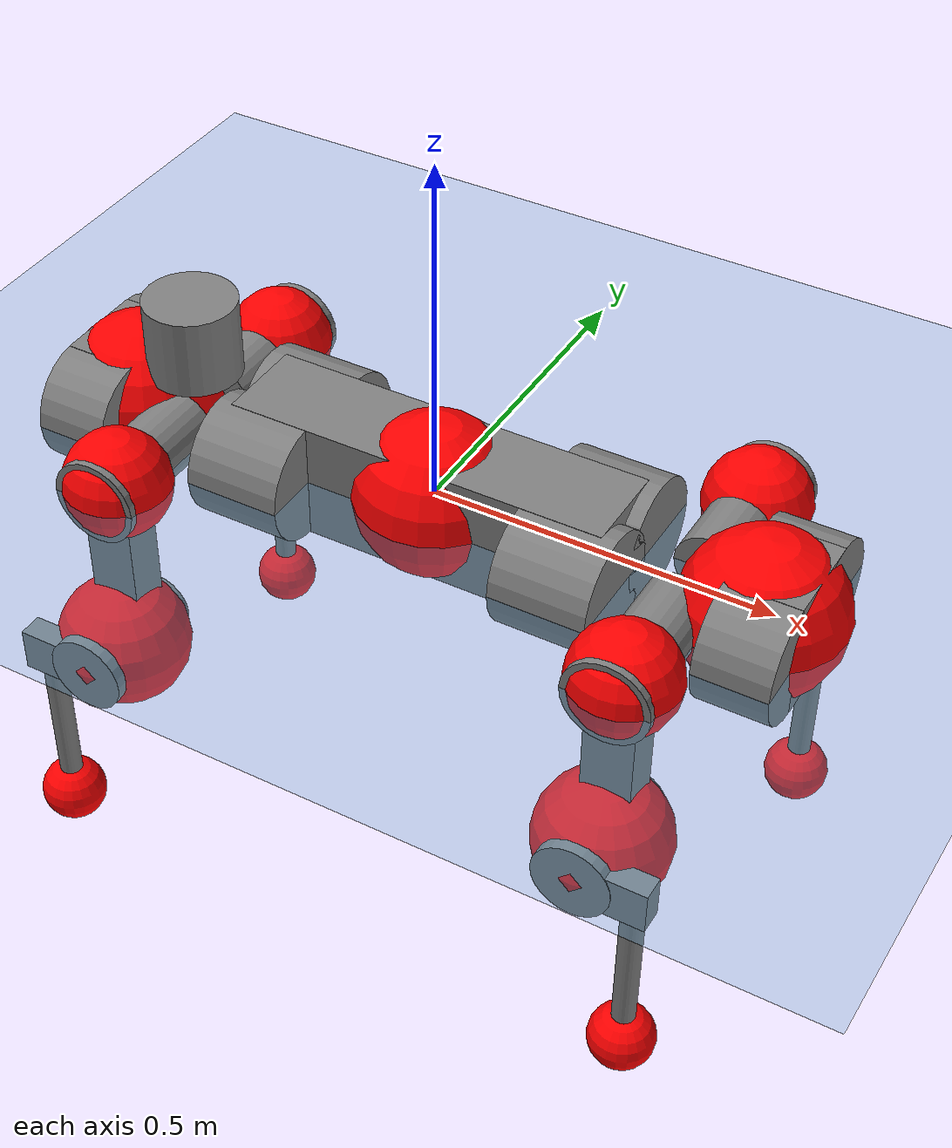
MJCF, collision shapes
<mujoco model="anymal_c">
  <compiler angle="radian" assetdir="assets" balanceinertia="true" inertiafromgeom="false"/>

  <option timestep="0.005" density="1.2" viscosity="2e-05"/>

  <size nkey="1"/>

  <visual>
    <quality shadowsize="8192"/>
    <map shadowclip="0.5"/>
  </visual>

  <default>
    <default class="/">
      <material specular="0" shininess="0.25"/>
      <geom contype="0" conaffinity="0" group="1" solref="-1000 -80"/>
      <site size="0.01 0.005 0.005" group="5"/>
      <general forcelimited="true" forcerange="-80 80" biastype="affine" gainprm="80" biasprm="0 -80 -2"/>
      <default class="anymal_c">
        <joint armature="0.01" damping="0.01" frictionloss="0.1"/>
        <default class="visual">
          <geom type="mesh" group="2"/>
          <default class="visual_zflip"/>
        </default>
        <default class="collision">
          <geom type="cylinder" group="3"/>
          <default class="foot">
            <geom size="0.03 0 0" type="sphere" condim="6" priority="1" friction="0.8 0.02 0.01" solimp="0.015 1 0.03"/>
          </default>
        </default>
      </default>
      <default class="reward_collision_sphere">
        <geom group="5" rgba="1 0 0 1"/>
      </default>
    </default>
  </default>

  <asset>
    <texture type="skybox" colorspace="auto" name="//unnamed_texture_0" builtin="gradient" rgb1="0.95 0.95 0.95" rgb2="0.95 0.95 0.95" width="100" height="600"/>
    <texture type="2d" colorspace="auto" name="texplane" builtin="checker" rgb1="0.345 0.575 0.748" rgb2="0.345 0.575 0.748" markrgb="1 1 1" width="512" height="512"/>
    <texture type="2d" colorspace="linear" name="base" file="base.png"/>
    <texture type="2d" colorspace="linear" name="top_shell" file="top_shell.png"/>
    <texture type="2d" colorspace="linear" name="bottom_shell" file="bottom_shell.png"/>
    <texture type="2d" colorspace="linear" name="remote" file="remote.png"/>
    <texture type="2d" colorspace="linear" name="hatch" file="hatch.png"/>
    <texture type="2d" colorspace="linear" name="handle" file="handle.png"/>
    <texture type="2d" colorspace="linear" name="face" file="face.png"/>
    <texture type="2d" colorspace="linear" name="battery" file="battery.png"/>
    <texture type="2d" colorspace="linear" name="lidar_cage" file="lidar_cage.png"/>
    <texture type="2d" colorspace="linear" name="depth_camera" file="depth_camera.png"/>
    <texture type="2d" colorspace="linear" name="wide_angle_camera" file="wide_angle_camera.png"/>
    <texture type="2d" colorspace="linear" name="lidar" file="lidar.png"/>
    <texture type="2d" colorspace="linear" name="drive" file="drive.png"/>
    <texture type="2d" colorspace="linear" name="hip_l" file="hip_l.png"/>
    <texture type="2d" colorspace="linear" name="shank_l" file="shank_l.png"/>
    <texture type="2d" colorspace="linear" name="foot" file="foot.png"/>
    <texture type="2d" colorspace="linear" name="thigh" file="thigh.png"/>
    <texture type="2d" colorspace="linear" name="shank_r" file="shank_r.png"/>
    <texture type="2d" colorspace="linear" name="hip_r" file="hip_r.png"/>
    <material name="MatPlane" class="/" texture="texplane" texuniform="true" texrepeat="2 2" specular="0.9" shininess="0.5"/>
    <material name="black_plastic" class="/" rgba="0.007 0.007 0.007 1"/>
    <material name="green" class="/" rgba="0.052 0.178 0.033 1"/>
    <material name="red" class="/" rgba="0.178 0.006 0.005 1"/>
    <material name="yellow" class="/" rgba="0.178 0.119 0.006 1"/>
    <material name="lwl" class="/" rgba="0.8 0.8 0.8 1"/>
    <material name="base" class="/" texture="base"/>
    <material name="top_shell" class="/" texture="top_shell"/>
    <material name="bottom_shell" class="/" texture="bottom_shell"/>
    <material name="hip_l" class="/" texture="hip_l"/>
    <material name="thigh" class="/" texture="thigh"/>
    <material name="shank_l" class="/" texture="shank_l"/>
    <material name="foot" class="/" texture="foot"/>
    <material name="hip_r" class="/" texture="hip_r"/>
    <material name="shank" class="/" texture="shank_r"/>
    <material name="hatch" class="/" texture="hatch"/>
    <material name="remote" class="/" texture="remote"/>
    <material name="handle" class="/" texture="handle"/>
    <material name="face" class="/" texture="face"/>
    <material name="depth_camera" class="/" texture="depth_camera"/>
    <material name="wide_angle_camera" class="/" texture="wide_angle_camera"/>
    <material name="battery" class="/" texture="battery"/>
    <material name="lidar_cage" class="/" texture="lidar_cage"/>
    <material name="lidar" class="/" texture="lidar"/>
    <material name="drive" class="/" texture="drive"/>
    <mesh name="base_0" class="/" file="base_0.obj"/>
    <mesh name="base_1" class="/" file="base_1.obj"/>
    <mesh name="base_2" class="/" file="base_2.obj"/>
    <mesh name="base_3" class="/" file="base_3.obj"/>
    <mesh name="base_4" class="/" file="base_4.obj"/>
    <mesh name="base_5" class="/" file="base_5.obj"/>
    <mesh name="top_shell" class="/" file="top_shell.obj"/>
    <mesh name="bottom_shell" class="/" file="bottom_shell.obj"/>
    <mesh name="remote" class="/" file="remote.obj"/>
    <mesh name="handle" class="/" file="handle.obj"/>
    <mesh name="face" class="/" file="face.obj"/>
    <mesh name="wide_angle_camera" class="/" file="wide_angle_camera.obj"/>
    <mesh name="depth_camera" class="/" file="depth_camera.obj"/>
    <mesh name="battery" class="/" file="battery.obj"/>
    <mesh name="lidar_cage" class="/" file="lidar_cage.obj"/>
    <mesh name="lidar" class="/" file="lidar.obj"/>
    <mesh name="drive" class="/" file="drive.obj"/>
    <mesh name="hip_l" class="/" file="hip_l.obj"/>
    <mesh name="thigh" class="/" file="thigh.obj"/>
    <mesh name="shank_l" class="/" file="shank_l.obj"/>
    <mesh name="foot" class="/" file="foot.obj"/>
    <mesh name="hip_r" class="/" file="hip_r.obj"/>
    <mesh name="hatch" class="/" file="hatch.obj"/>
    <mesh name="shank_r" class="/" file="shank_r.obj"/>
  </asset>

  <worldbody>
    <geom name="floor" class="/" size="100 100 0.125" type="plane" group="0" material="MatPlane"/>
    <light name="toplight_shadow" class="/" pos="0 0 5" dir="0.0990148 0.0990148 -0.990148" type="directional" ambient="0.04 0.04 0.04" diffuse="0.55 0.55 0.55" specular="0.12 0.12 0.12"/>
    <light name="toplight_fill" class="/" pos="0 0 5" dir="0.0990148 0.0990148 -0.990148" type="directional" castshadow="false" ambient="0.04 0.04 0.04" diffuse="0.3 0.3 0.3" specular="0.08 0.08 0.08"/>
    <body name="trunk" childclass="anymal_c" pos="0.00216967 -0.000928997 -0.000553776" quat="1 0.000136247 -0.000375169 -0.000114861">
      <inertial pos="0.00242742 2.36658e-05 0.0456694" quat="0.499422 0.500451 0.499583 0.500543" mass="17.1594" diaginertia="0.927555 0.395137 0.148916"/>
      <joint name="//unnamed_joint_0" type="free" armature="0" damping="0" frictionloss="0"/>
      <geom name="//unnamed_geom_1" class="visual" material="green" mesh="base_0"/>
      <geom name="//unnamed_geom_2" class="visual" material="yellow" mesh="base_1"/>
      <geom name="//unnamed_geom_3" class="visual" material="red" mesh="base_2"/>
      <geom name="//unnamed_geom_4" class="visual" material="black_plastic" mesh="base_3"/>
      <geom name="//unnamed_geom_5" class="visual" material="lwl" mesh="base_4"/>
      <geom name="//unnamed_geom_6" class="visual" material="base" mesh="base_5"/>
      <geom name="trunk_1" class="collision" size="0.280675 0.0677491 0.0871059" type="box"/>
      <geom name="trunk_2" class="collision" size="0.0871059 0.0701687" pos="0.232131 0.0636224 0" quat="0.707107 0 0.707107 0"/>
      <geom name="trunk_3" class="collision" size="0.0871059 0.0701687" pos="-0.232131 0.0636224 0" quat="0.707107 0 0.707107 0"/>
      <geom name="trunk_4" class="collision" size="0.0871059 0.0701687" pos="0.232131 -0.0636224 0" quat="0.707107 0 0.707107 0"/>
      <geom name="trunk_5" class="collision" size="0.0871059 0.0701687" pos="-0.232131 -0.0636224 0" quat="0.707107 0 0.707107 0"/>
      <geom name="//unnamed_geom_12" class="visual" material="top_shell" mesh="top_shell"/>
      <geom name="//unnamed_geom_13" class="visual" material="bottom_shell" mesh="bottom_shell"/>
      <geom name="//unnamed_geom_14" class="visual" material="remote" mesh="remote"/>
      <geom name="//unnamed_geom_15" class="visual" material="handle" mesh="handle"/>
      <geom name="//unnamed_geom_16" class="visual" pos="0.442383 0 0" quat="1 0 0 0" material="face" mesh="face"/>
      <geom name="trunk_6" class="collision" size="0.0532314 0.0677491 0.0871059" pos="0.501083 0 0" type="box"/>
      <geom name="//unnamed_geom_18" class="collision" size="0.0871059 0.0532314" pos="0.501083 0.0636224 0" quat="0.707107 0 0.707107 0"/>
      <geom name="//unnamed_geom_19" class="collision" size="0.0871059 0.0532314" pos="0.501083 -0.0636224 0" quat="0.707107 0 0.707107 0"/>
      <geom name="//unnamed_geom_20" class="visual" pos="0.492699 0 -0.026016" quat="0.965926 0 0.258819 0" material="depth_camera" mesh="depth_camera"/>
      <geom name="//unnamed_geom_21" class="visual" pos="0.547509 0 0.0138828" material="wide_angle_camera" mesh="wide_angle_camera"/>
      <geom name="//unnamed_geom_22" class="visual_zflip" pos="-0.442383 0 0" quat="0 0 0 1" material="face" mesh="face"/>
      <geom name="trunk_7" class="collision" size="0.0532314 0.0677491 0.0871059" pos="-0.501083 0 0" quat="0 0 0 1" type="box"/>
      <geom name="//unnamed_geom_24" class="collision" size="0.0871059 0.0532314" pos="-0.501083 -0.0636224 0" quat="0 -0.707107 0 0.707107"/>
      <geom name="//unnamed_geom_25" class="collision" size="0.0871059 0.0532314" pos="-0.501083 0.0636224 0" quat="0 -0.707107 0 0.707107"/>
      <geom name="//unnamed_geom_26" class="visual" pos="-0.492699 0 -0.026016" quat="0 -0.258819 0 0.965926" material="depth_camera" mesh="depth_camera"/>
      <geom name="//unnamed_geom_27" class="visual_zflip" pos="-0.547509 0 0.0138828" quat="0 0 0 1" material="wide_angle_camera" mesh="wide_angle_camera"/>
      <geom name="//unnamed_geom_28" class="visual" material="battery" mesh="battery"/>
      <geom name="//unnamed_geom_29" class="visual" pos="0 0.0674098 0.0280034" quat="0.683013 -0.183013 0.183013 0.683013" material="depth_camera" mesh="depth_camera"/>
      <geom name="//unnamed_geom_30" class="visual" pos="0 -0.0674098 0.0280034" quat="0.683013 0.183013 0.183013 -0.683013" material="depth_camera" mesh="depth_camera"/>
      <geom name="//unnamed_geom_31" class="visual" pos="-0.388486 0 0.0681618" quat="1 0 0 0" material="lidar_cage" mesh="lidar_cage"/>
      <geom name="trunk_8" class="collision" size="0.0677491 0.0580706" pos="-0.388486 0 0.123804"/>
      <geom name="//unnamed_geom_33" class="visual" pos="-0.388486 -6.22223e-05 0.131872" quat="0.707107 0 0 -0.707107" material="lidar" mesh="lidar"/>
      <geom name="//unnamed_geom_34" class="visual" pos="0.320074 0.0945312 -3.18789e-10" quat="0.258819 0.965926 0 0" material="drive" mesh="drive"/>
      <geom name="//unnamed_geom_35" class="visual" pos="0.320074 -0.0945312 3.18789e-10" quat="0.258819 -0.965926 0 0" material="drive" mesh="drive"/>
      <geom name="//unnamed_geom_36" class="visual" pos="-0.320074 0.0945312 3.18789e-10" quat="0 0 0.965926 -0.258819" material="drive" mesh="drive"/>
      <geom name="//unnamed_geom_37" class="visual" pos="-0.320074 -0.0945312 -3.18789e-10" quat="0 0 -0.965926 -0.258819" material="drive" mesh="drive"/>
      <geom name="//unnamed_geom_38" class="visual" pos="0.123803 0 0.0676981" quat="1 0 0 0" material="hatch" mesh="hatch"/>
      <geom name="//unnamed_geom_39" class="reward_collision_sphere" size="0.116141"/>
      <geom name="//unnamed_geom_40" class="reward_collision_sphere" size="0.116141" pos="0.480271 0 0"/>
      <geom name="//unnamed_geom_41" class="reward_collision_sphere" size="0.116141" pos="-0.480271 0 0"/>
      <site name="imu" pos="0.260658 0.0069947 0.0304008" size="0.00967844"/>
      <camera name="track" pos="0 -1.81778 0" quat="0.707107 0.707107 0 0" mode="trackcom"/>
      <camera name="ego_camera" pos="0.480271 0 -0.0370949" quat="-0.5 -0.5 0.5 0.5"/>
      <body name="LF_HIP" pos="0.320412 0.0951472 0.000574092" quat="0.258577 0.96599 -0.000610876 -0.000648859">
        <inertial pos="0.0581434 -0.0126836 -0.00720464" quat="-0.128106 0.710093 -0.134932 0.67908" mass="2.53427" diaginertia="0.00814525 0.00299943 0.0022424"/>
        <joint name="LF_HAA" pos="0 0 0" axis="0.999889 -0.00690754 0.0131934" range="-0.729784 0.489265" armature="0.00846769" damping="0.00771787" frictionloss="0.0945567"/>
        <geom name="//unnamed_geom_42" class="visual" pos="0 -1.87529e-05 3.08015e-06" quat="0.258819 -0.965926 0 0" material="hip_l" mesh="hip_l"/>
        <geom name="//unnamed_geom_43" class="visual" pos="0.0639294 -0.0753854 -0.0436605" quat="0.183013 -0.683013 0.683013 0.183013" material="drive" mesh="drive"/>
        <geom name="//unnamed_geom_44" class="collision" size="0.0483922 0.0677491" pos="0.0639294 -0.0108702 -0.0064035" quat="-0.353553 -0.612372 0.612372 -0.353553"/>
        <body name="LF_THIGH" pos="0.064114 -0.0651308 -0.0395409" quat="0.183244 -0.68288 0.683032 0.183204">
          <inertial pos="0.0328123 6.24984e-05 -0.230319" quat="0.993117 -0.00314794 -0.0823646 0.0832118" mass="2.83385" diaginertia="0.0424415 0.0187963 0.00290651"/>
          <joint name="LF_HFE" pos="0 0 0" axis="1 -0.000730362 0.000252549" range="-3.16174 3.14028" armature="0.0106208" damping="0.00867054" frictionloss="0.09639"/>
          <geom name="//unnamed_geom_45" class="visual" pos="0.00315109 4.96538e-06 0" quat="0.707107 0 0 -0.707107" material="thigh" mesh="thigh"/>
          <geom name="//unnamed_geom_46" class="collision" size="0.0629099 0.0387138" pos="0.0426908 0 0" quat="0.5 0.5 -0.5 -0.5"/>
          <geom name="//unnamed_geom_47" class="collision" size="0.0362941 0.0290353 0.13677" pos="0.0320181 0 -0.131051" quat="0.707107 0 0 -0.707107" type="box"/>
          <geom name="//unnamed_geom_48" class="visual" pos="0.107047 0 -0.264301" quat="1 0 0 0" material="drive" mesh="drive"/>
          <geom name="//unnamed_geom_49" class="collision" size="0.0483922 0.0677491" pos="0.0323382 0 -0.264301" quat="0.707107 0 0.707107 0"/>
          <geom name="//unnamed_geom_50" class="reward_collision_sphere" size="0.0774275" pos="0.0266817 0 0"/>
          <body name="LF_SHANK" pos="0.107352 -0.00292301 -0.263307" quat="1 0.000230686 0.000348319 0.000203397">
            <inertial pos="0.00532303 -0.0549405 -0.0750597" quat="0.992505 -0.120394 0.00817846 -0.0193157" mass="0.537457" diaginertia="0.0138858 0.00574577 0.000752443"/>
            <joint name="LF_KFE" pos="0 0 0" axis="0.999988 0.0033701 0.0035378" range="-3.14614 3.14279" armature="0.00963072" damping="0.00128183" frictionloss="0.0991349"/>
            <geom name="//unnamed_geom_51" class="visual" pos="0.0010275 0.0054787 0" quat="0.707107 0 0 -0.707107" material="shank_l" mesh="shank_l"/>
            <geom name="LF_kfe_act" class="collision" size="0.0580706 0.0193569" pos="0.0213454 0 0" quat="0.5 0.5 -0.5 -0.5"/>
            <geom name="//unnamed_geom_53" class="collision" size="0.0556501 0.0326647 0.018389" pos="0.0213454 -0.0522603 0" quat="0.5 0.5 -0.5 -0.5" type="box"/>
            <geom name="//unnamed_geom_54" class="visual" pos="0.0139276 -0.0781714 -0.313424" quat="0.382683 0 0 -0.92388" material="foot" mesh="foot"/>
            <geom name="LF_calf" class="collision" size="0.0169373 0.13671" pos="0.0139279 -0.079937 -0.156712" quat="0.707107 0 0 -0.707107"/>
            <geom name="LF_foot" class="foot" size="0.0303392" pos="0.0139279 -0.079937 -0.292558" quat="0.707107 0 0 -0.707107"/>
            <geom name="//unnamed_geom_57" class="reward_collision_sphere" size="0.0967844" pos="-0.0533634 0 0"/>
            <geom name="//unnamed_geom_58" class="reward_collision_sphere" size="0.0483922" pos="0.0139279 -0.079937 -0.292558"/>
            <site name="LF_foot" class="foot" pos="0.0139279 -0.079937 -0.292558" quat="0.707107 0 0 -0.707107" size="0.00967844"/>
          </body>
        </body>
      </body>
      <body name="RF_HIP" pos="0.318006 -0.0926334 -0.00094172" quat="0.25881 -0.965928 -0.000107158 -4.0164e-05">
        <inertial pos="0.0631409 0.0131834 -0.0100911" quat="0.136554 0.678054 0.12793 0.710795" mass="2.59984" diaginertia="0.00830908 0.00311867 0.00232289"/>
        <joint name="RF_HAA" pos="0 0 0" axis="0.999921 0.0117376 -0.00451612" range="-0.540924 0.726262" armature="0.00971518" damping="0.0115727" frictionloss="0.0878556"/>
        <geom name="//unnamed_geom_59" class="visual" pos="0 1.87528e-05 3.08014e-06" quat="0.258819 0.965926 0 0" material="hip_r" mesh="hip_r"/>
        <geom name="//unnamed_geom_60" class="visual" pos="0.0639294 0.0753854 -0.0436605" quat="0.183013 0.683013 0.683013 -0.183013" material="drive" mesh="drive"/>
        <geom name="//unnamed_geom_61" class="collision" size="0.0483922 0.0677491" pos="0.0639294 0.0108702 -0.0064035" quat="-0.353553 0.612372 0.612372 0.353553"/>
        <body name="RF_THIGH" pos="0.0642278 0.0667505 -0.0391077" quat="0.182836 0.682977 0.683036 -0.183233">
          <inertial pos="0.0333319 0.00249342 -0.228422" quat="0.992726 -0.00488078 -0.0809267 0.0890118" mass="2.74472" diaginertia="0.0417656 0.0182659 0.00282889"/>
          <joint name="RF_HFE" pos="0 0 0" axis="0.999994 -0.000828614 0.00325103" stiffness="0.00177723" range="-3.1468 3.13227" armature="0.010214" damping="0.000268733" frictionloss="0.0946979"/>
          <geom name="//unnamed_geom_62" class="visual" pos="0.00315109 4.96538e-06 0" quat="0.707107 0 0 -0.707107" material="thigh" mesh="thigh"/>
          <geom name="//unnamed_geom_63" class="collision" size="0.0629099 0.0387138" pos="0.0426908 0 0" quat="0.5 0.5 0.5 0.5"/>
          <geom name="//unnamed_geom_64" class="collision" size="0.0362941 0.0290353 0.13677" pos="0.0320181 0 -0.131051" quat="0.707107 0 0 0.707107" type="box"/>
          <geom name="//unnamed_geom_65" class="visual" pos="0.107047 0 -0.264301" quat="1 0 0 0" material="drive" mesh="drive"/>
          <geom name="//unnamed_geom_66" class="collision" size="0.0483922 0.0677491" pos="0.0323382 0 -0.264301" quat="0.707107 0 0.707107 0"/>
          <geom name="//unnamed_geom_67" class="reward_collision_sphere" size="0.0774275" pos="0.0266817 0 0"/>
          <body name="RF_SHANK" pos="0.106945 -0.000946378 -0.262027" quat="0.999999 -0.000870795 -0.000947515 0.000174633">
            <inertial pos="0.00860137 0.0550703 -0.0727042" quat="0.992908 0.115866 -0.00231162 0.0265059" mass="0.521322" diaginertia="0.0140267 0.00587491 0.000792628"/>
            <joint name="RF_KFE" pos="0 0 0" axis="1 0.000219915 0.000793355" range="-3.1825 3.12569" armature="0.00971628" damping="0.0191796" frictionloss="0.106931"/>
            <geom name="//unnamed_geom_68" class="visual" pos="0.0010275 -0.00547868 0" quat="0.707107 0 0 0.707107" material="shank" mesh="shank_r"/>
            <geom name="RF_kfe_act" class="collision" size="0.0580706 0.0193569" pos="0.0213454 0 0" quat="0.5 0.5 0.5 0.5"/>
            <geom name="//unnamed_geom_70" class="collision" size="0.0556501 0.0326647 0.018389" pos="0.0213454 0.0522603 0" quat="0.5 0.5 0.5 0.5" type="box"/>
            <geom name="//unnamed_geom_71" class="visual" pos="0.0139281 0.0781714 -0.313424" quat="0.382683 0 0 0.92388" material="foot" mesh="foot"/>
            <geom name="RF_calf" class="collision" size="0.0169373 0.13671" pos="0.0139279 0.079937 -0.156712" quat="0.707107 0 0 0.707107"/>
            <geom name="RF_foot" class="foot" size="0.0291888" pos="0.0139279 0.079937 -0.292558" quat="0.707107 0 0 0.707107"/>
            <geom name="//unnamed_geom_74" class="reward_collision_sphere" size="0.0967844" pos="-0.0533634 0 0"/>
            <geom name="//unnamed_geom_75" class="reward_collision_sphere" size="0.0483922" pos="0.0139279 0.079937 -0.292558"/>
            <site name="RF_foot" class="foot" pos="0.0139279 0.079937 -0.292558" quat="0.707107 0 0 0.707107" size="0.00967844"/>
          </body>
        </body>
      </body>
      <body name="LH_HIP" pos="-0.316945 0.0929492 0.000714447" quat="-7.13272e-05 0.000423327 0.965983 -0.258604">
        <inertial pos="0.0630687 0.0110965 -0.00775364" quat="0.134831 0.680177 0.137699 0.707261" mass="2.53856" diaginertia="0.00821919 0.00305952 0.00220435"/>
        <joint name="LH_HAA" pos="0 0 0" axis="1 -0.000220561 -0.000799848" stiffness="0.000217491" range="-0.47775 0.704889" armature="0.00970325" damping="0.00986083" frictionloss="0.101862"/>
        <geom name="//unnamed_geom_76" class="visual" pos="0 1.87528e-05 3.08014e-06" quat="-0.258819 -0.965926 0 0" material="hip_r" mesh="hip_r"/>
        <geom name="//unnamed_geom_77" class="visual" pos="0.0639294 0.0753854 -0.0436605" quat="0.183013 0.683013 0.683013 -0.183013" material="drive" mesh="drive"/>
        <geom name="//unnamed_geom_78" class="collision" size="0.0483922 0.0677491" pos="0.0639294 0.0108702 -0.0064035" quat="-0.353553 0.612372 0.612372 0.353553"/>
        <body name="LH_THIGH" pos="0.0630821 0.0655228 -0.0391711" quat="0.183081 0.682988 0.682937 -0.183318">
          <inertial pos="0.0323617 0.00237998 -0.227065" quat="0.992775 -0.0122785 -0.0796191 0.0889222" mass="2.79964" diaginertia="0.0420309 0.0189146 0.00281493"/>
          <joint name="LH_HFE" pos="0 0 0" axis="0.999949 0.00124358 0.00997763" range="-3.12479 3.14971" armature="0.0108554" damping="0.00402941" frictionloss="0.10591"/>
          <geom name="//unnamed_geom_79" class="visual" pos="0.00315109 4.96538e-06 0" quat="0.707107 0 0 -0.707107" material="thigh" mesh="thigh"/>
          <geom name="//unnamed_geom_80" class="collision" size="0.0629099 0.0387138" pos="0.0426908 0 0" quat="0.5 0.5 -0.5 -0.5"/>
          <geom name="//unnamed_geom_81" class="collision" size="0.0362941 0.0290353 0.13677" pos="0.0320181 0 -0.131051" quat="0.707107 0 0 -0.707107" type="box"/>
          <geom name="//unnamed_geom_82" class="visual" pos="0.107047 0 -0.264301" quat="1 0 0 0" material="drive" mesh="drive"/>
          <geom name="//unnamed_geom_83" class="collision" size="0.0483922 0.0677491" pos="0.0323382 0 -0.264301" quat="0.707107 0 0.707107 0"/>
          <geom name="//unnamed_geom_84" class="reward_collision_sphere" size="0.0774275" pos="0.0266817 0 0"/>
          <body name="LH_SHANK" pos="0.106993 0.00100125 -0.267329" quat="0.999999 0.0012668 -4.46427e-06 -0.000641723">
            <inertial pos="0.00630566 0.0556051 -0.0721649" quat="0.992883 0.116294 -0.000769013 0.0256418" mass="0.516655" diaginertia="0.0140345 0.00575875 0.000765486"/>
            <joint name="LH_KFE" pos="0 0 0" axis="0.999976 0.000458891 0.00685584" range="-3.15543 3.12933" armature="0.00928856" damping="0.00697013" frictionloss="0.0895053"/>
            <geom name="//unnamed_geom_85" class="visual" pos="0.0010275 -0.00547868 0" quat="-0.707107 0 0 -0.707107" material="shank" mesh="shank_r"/>
            <geom name="LH_kfe_act" class="collision" size="0.0580706 0.0193569" pos="0.0213454 0 0" quat="0.5 0.5 -0.5 -0.5"/>
            <geom name="//unnamed_geom_87" class="collision" size="0.0556501 0.0326647 0.018389" pos="0.0213454 0.0522603 0" quat="0.5 0.5 -0.5 -0.5" type="box"/>
            <geom name="//unnamed_geom_88" class="visual" pos="0.0139281 0.0781714 -0.313424" quat="-0.382683 0 0 -0.92388" material="foot" mesh="foot"/>
            <geom name="LH_calf" class="collision" size="0.0169373 0.13671" pos="0.0139279 0.079937 -0.156712" quat="0.707107 0 0 -0.707107"/>
            <geom name="LH_foot" class="foot" size="0.0284316" pos="0.0139279 0.079937 -0.292558" quat="0.707107 0 0 -0.707107"/>
            <geom name="//unnamed_geom_91" class="reward_collision_sphere" size="0.0967844" pos="-0.0533634 0 0"/>
            <geom name="//unnamed_geom_92" class="reward_collision_sphere" size="0.0483922" pos="0.0139279 0.079937 -0.292558"/>
            <site name="LH_foot" class="foot" pos="0.0139279 0.079937 -0.292558" quat="0.707107 0 0 -0.707107" size="0.00967844"/>
          </body>
        </body>
      </body>
      <body name="RH_HIP" pos="-0.32244 -0.0956228 0.00039896" quat="0.000236528 -6.63216e-05 -0.966049 -0.258357">
        <inertial pos="0.0616503 -0.0142462 -0.00769198" quat="-0.13711 0.703478 -0.139037 0.683365" mass="2.5319" diaginertia="0.0081575 0.00308898 0.00227956"/>
        <joint name="RH_HAA" pos="0 0 0" axis="0.999905 -0.0137711 -0.00051931" stiffness="0.00261547" range="-0.721603 0.471124" armature="0.0100688" damping="0.008231" frictionloss="0.0961376"/>
        <geom name="//unnamed_geom_93" class="visual" pos="0 -1.87529e-05 3.08015e-06" quat="-0.258819 0.965926 0 0" material="hip_l" mesh="hip_l"/>
        <geom name="//unnamed_geom_94" class="visual" pos="0.0639294 -0.0753854 -0.0436605" quat="-0.183013 0.683013 -0.683013 -0.183013" material="drive" mesh="drive"/>
        <geom name="//unnamed_geom_95" class="collision" size="0.0483922 0.0677491" pos="0.0639294 -0.0108702 -0.0064035" quat="0.353553 0.612372 -0.612372 0.353553"/>
        <body name="RH_THIGH" pos="0.0636555 -0.0651298 -0.0369375" quat="-0.182618 0.682975 -0.683215 -0.182793">
          <inertial pos="0.0320854 -0.000612389 -0.228716" quat="0.992205 -0.010477 -0.0923976 0.0829623" mass="2.80176" diaginertia="0.0415447 0.0188788 0.00295111"/>
          <joint name="RH_HFE" pos="0 0 0" axis="0.999999 0.00153246 0.00071819" range="-3.14626 3.1247" armature="0.0104868" damping="0" frictionloss="0.0986938"/>
          <geom name="//unnamed_geom_96" class="visual" pos="0.00315109 4.96538e-06 0" quat="0.707107 0 0 -0.707107" material="thigh" mesh="thigh"/>
          <geom name="//unnamed_geom_97" class="collision" size="0.0629099 0.0387138" pos="0.0426908 0 0" quat="0.5 0.5 0.5 0.5"/>
          <geom name="//unnamed_geom_98" class="collision" size="0.0362941 0.0290353 0.13677" pos="0.0320181 0 -0.131051" quat="0.707107 0 0 0.707107" type="box"/>
          <geom name="//unnamed_geom_99" class="visual" pos="0.107047 0 -0.264301" quat="1 0 0 0" material="drive" mesh="drive"/>
          <geom name="//unnamed_geom_100" class="collision" size="0.0483922 0.0677491" pos="0.0323382 0 -0.264301" quat="0.707107 0 0.707107 0"/>
          <geom name="//unnamed_geom_101" class="reward_collision_sphere" size="0.0774275" pos="0.0266817 0 0"/>
          <body name="RH_SHANK" pos="0.107327 -6.34692e-05 -0.264188" quat="1 5.11832e-05 6.5366e-05 -0.000248246">
            <inertial pos="0.00381522 -0.0581003 -0.0724433" quat="0.992886 -0.116811 -0.000723349 -0.023051" mass="0.542745" diaginertia="0.013858 0.00583802 0.000765294"/>
            <joint name="RH_KFE" pos="0 0 0" axis="0.999982 0.00409377 -0.00435888" stiffness="0.00225734" range="-3.10791 3.18374" armature="0.00961859" damping="0.00488756" frictionloss="0.108771"/>
            <geom name="//unnamed_geom_102" class="visual" pos="0.0010275 0.0054787 0" quat="0.707107 0 0 -0.707107" material="shank_l" mesh="shank_l"/>
            <geom name="RH_kfe_act" class="collision" size="0.0580706 0.0193569" pos="0.0213454 0 0" quat="0.5 0.5 0.5 0.5"/>
            <geom name="//unnamed_geom_104" class="collision" size="0.0556501 0.0326647 0.018389" pos="0.0213454 -0.0522603 0" quat="0.5 0.5 0.5 0.5" type="box"/>
            <geom name="//unnamed_geom_105" class="visual" pos="0.0139276 -0.0781714 -0.313424" quat="0.382683 0 0 -0.92388" material="foot" mesh="foot"/>
            <geom name="RH_calf" class="collision" size="0.0169373 0.13671" pos="0.0139279 -0.079937 -0.156712" quat="0.707107 0 0 0.707107"/>
            <geom name="RH_foot" class="foot" size="0.0290786" pos="0.0139279 -0.079937 -0.292558" quat="0.707107 0 0 0.707107"/>
            <geom name="//unnamed_geom_108" class="reward_collision_sphere" size="0.0967844" pos="-0.0533634 0 0"/>
            <geom name="//unnamed_geom_109" class="reward_collision_sphere" size="0.0483922" pos="0.0139279 -0.079937 -0.292558"/>
            <site name="RH_foot" class="foot" pos="0.0139279 -0.079937 -0.292558" quat="0.707107 0 0 0.707107" size="0.00967844"/>
          </body>
        </body>
      </body>
    </body>
  </worldbody>

  <contact>
    <pair class="/" geom1="floor" geom2="LF_foot" name="//unnamed_contact_0"/>
    <pair class="/" geom1="floor" geom2="RF_foot" name="//unnamed_contact_1"/>
    <pair class="/" geom1="floor" geom2="LH_foot" name="//unnamed_contact_2"/>
    <pair class="/" geom1="floor" geom2="RH_foot" name="//unnamed_contact_3"/>
  </contact>

  <actuator>
    <general name="LF_HAA" class="/" joint="LF_HAA" forcerange="-77.9385 77.9385" gainprm="78.1172" biasprm="0 -78.1172 -1.90483"/>
    <general name="LF_HFE" class="/" joint="LF_HFE" forcerange="-72.2692 72.2692" gainprm="78.1172" biasprm="0 -78.1172 -1.90483"/>
    <general name="LF_KFE" class="/" joint="LF_KFE" forcerange="-75.7991 75.7991" gainprm="78.1172" biasprm="0 -78.1172 -1.90483"/>
    <general name="RF_HAA" class="/" joint="RF_HAA" forcerange="-77.9827 77.9827" gainprm="78.1172" biasprm="0 -78.1172 -1.90483"/>
    <general name="RF_HFE" class="/" joint="RF_HFE" forcerange="-77.647 77.647" gainprm="78.1172" biasprm="0 -78.1172 -1.90483"/>
    <general name="RF_KFE" class="/" joint="RF_KFE" forcerange="-78.6428 78.6428" gainprm="78.1172" biasprm="0 -78.1172 -1.90483"/>
    <general name="LH_HAA" class="/" joint="LH_HAA" forcerange="-78.2007 78.2007" gainprm="78.1172" biasprm="0 -78.1172 -1.90483"/>
    <general name="LH_HFE" class="/" joint="LH_HFE" forcerange="-79.6277 79.6277" gainprm="78.1172" biasprm="0 -78.1172 -1.90483"/>
    <general name="LH_KFE" class="/" joint="LH_KFE" forcerange="-79.0872 79.0872" gainprm="78.1172" biasprm="0 -78.1172 -1.90483"/>
    <general name="RH_HAA" class="/" joint="RH_HAA" forcerange="-77.2912 77.2912" gainprm="78.1172" biasprm="0 -78.1172 -1.90483"/>
    <general name="RH_HFE" class="/" joint="RH_HFE" forcerange="-74.4369 74.4369" gainprm="78.1172" biasprm="0 -78.1172 -1.90483"/>
    <general name="RH_KFE" class="/" joint="RH_KFE" forcerange="-70.1056 70.1056" gainprm="78.1172" biasprm="0 -78.1172 -1.90483"/>
  </actuator>

  <sensor>
    <gyro site="imu" name="imu_angular_velocity"/>
    <velocimeter site="imu" name="imu_linear_velocity"/>
    <framelinvel objtype="site" objname="LF_foot" name="LF_foot_global_linear_velocity"/>
    <framelinvel objtype="site" objname="RF_foot" name="RF_foot_global_linear_velocity"/>
    <framelinvel objtype="site" objname="LH_foot" name="LH_foot_global_linear_velocity"/>
    <framelinvel objtype="site" objname="RH_foot" name="RH_foot_global_linear_velocity"/>
  </sensor>

  <keyframe>
    <key name="home" qpos="0 0 0.55 1 0 0 0 0 0.4 -0.8 0 -0.4 0.8 0 -0.4 0.8 0 0.4 -0.8"/>
  </keyframe>
</mujoco>
